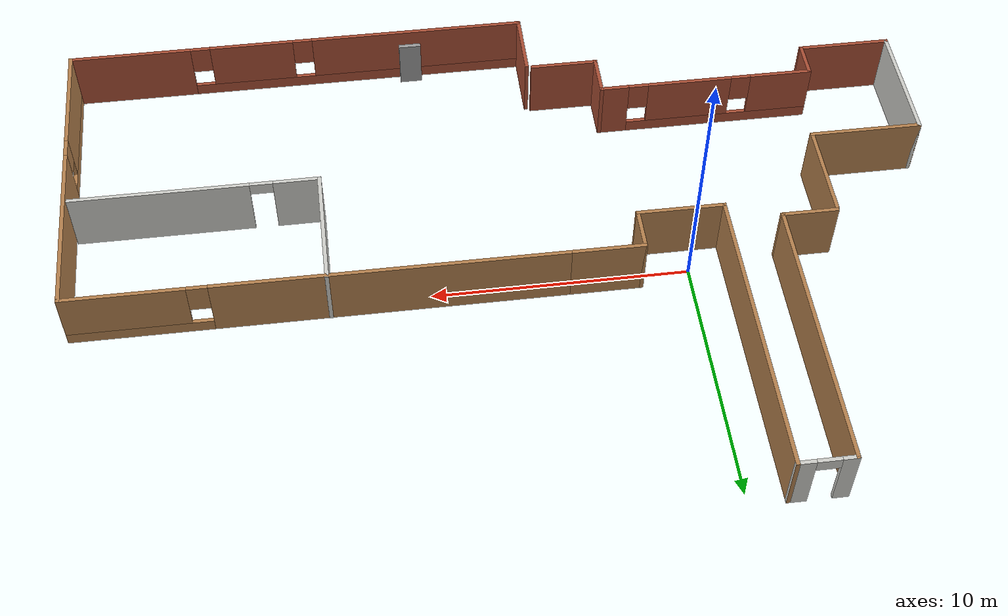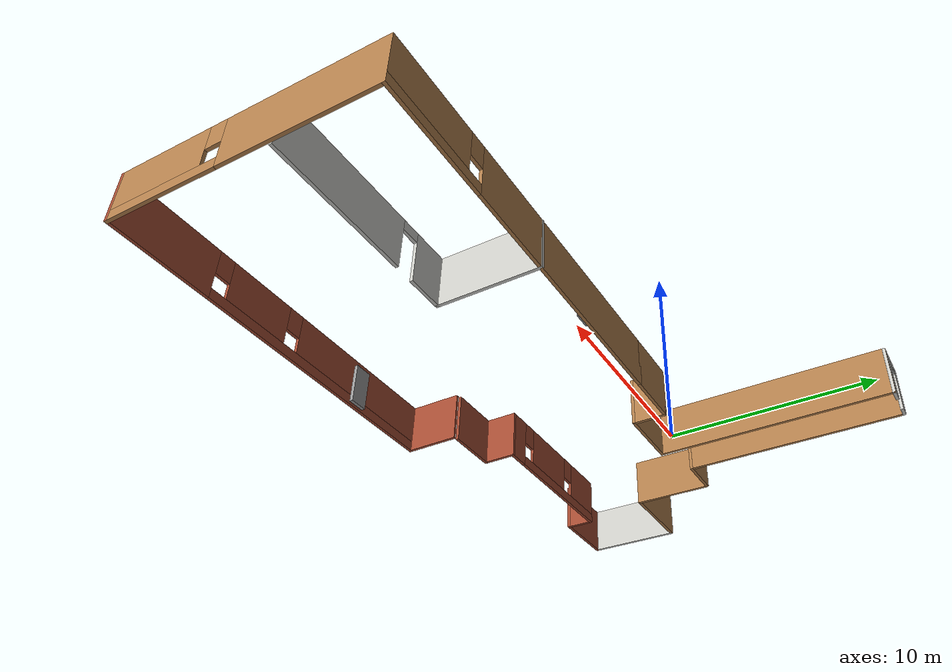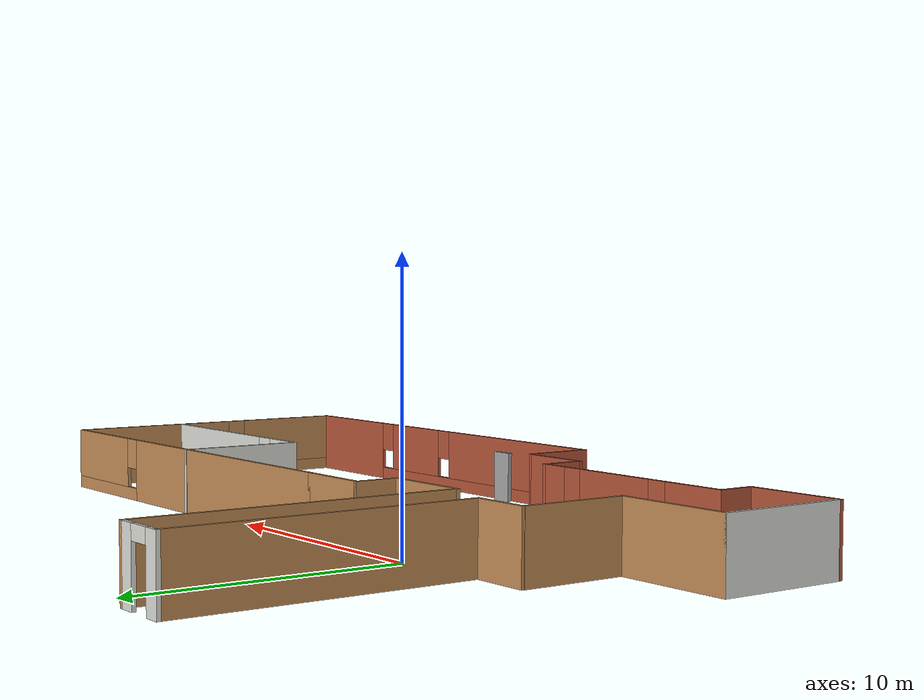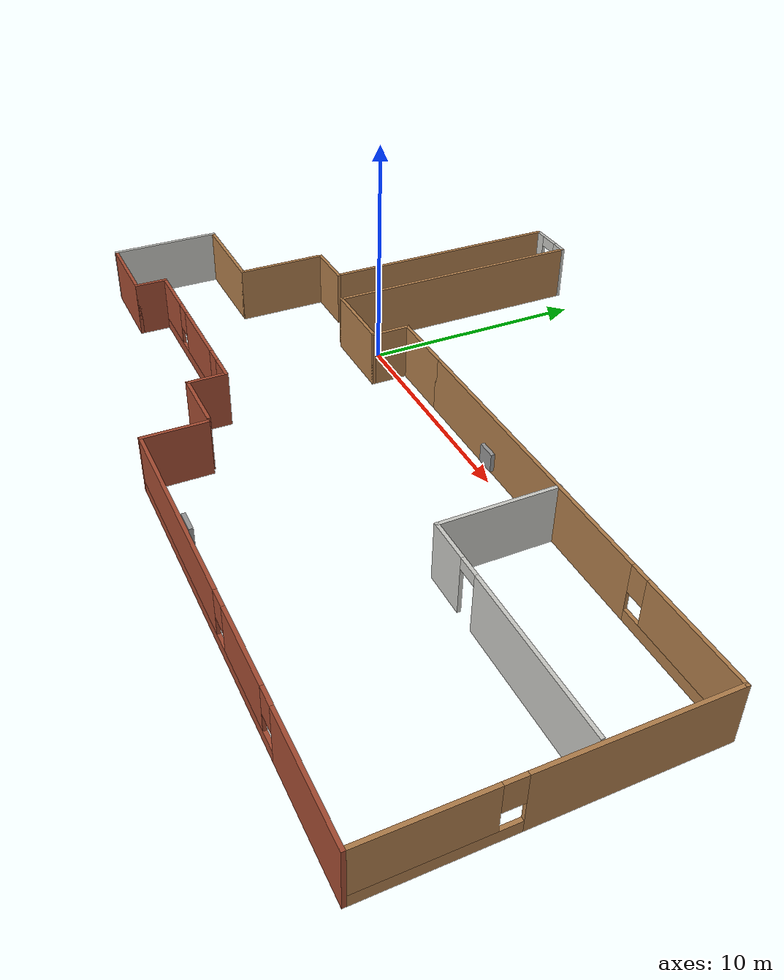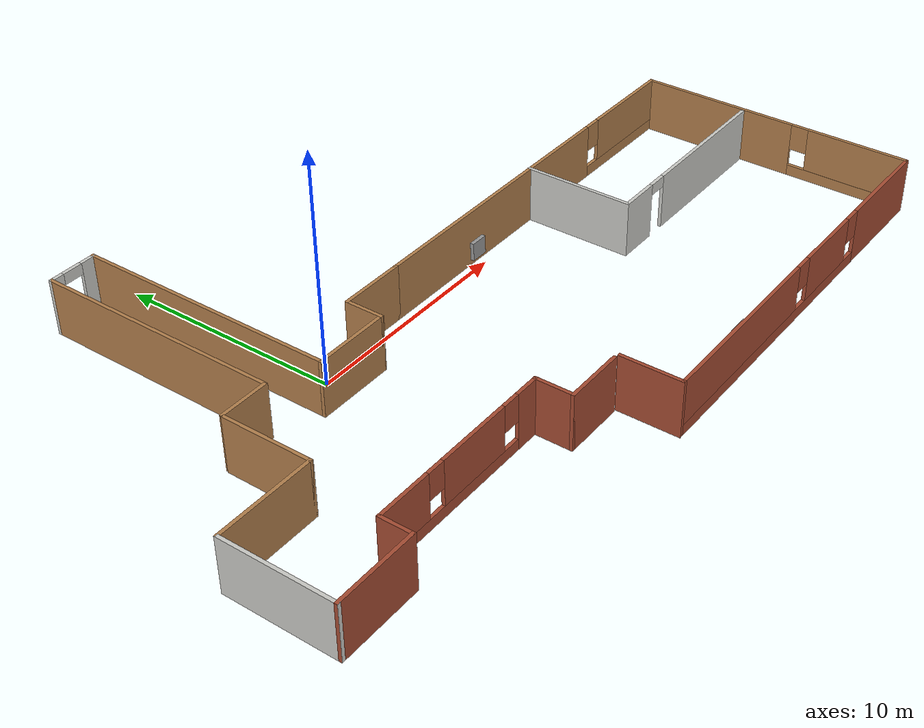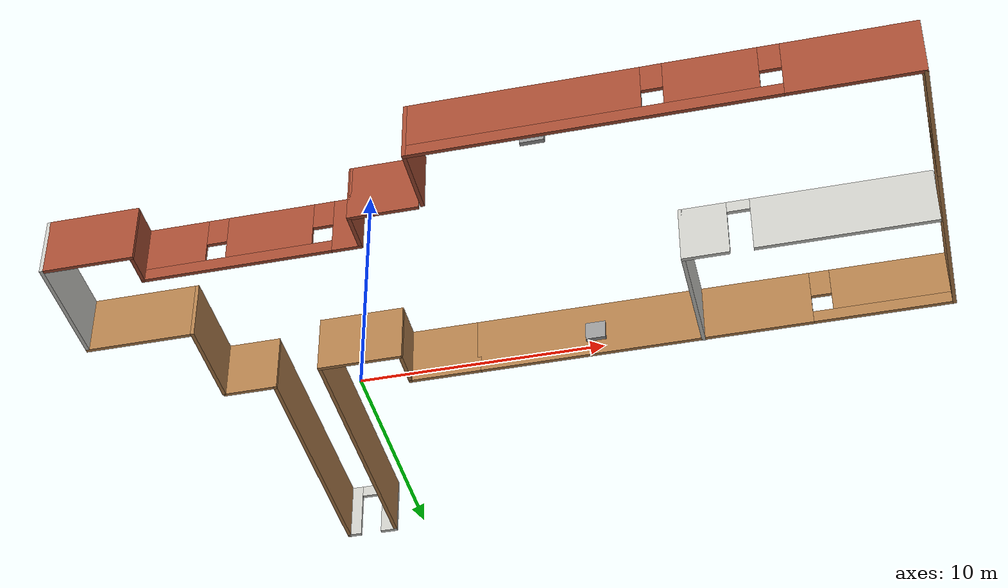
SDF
<?xml version='1.0'?>
<sdf version='1.6'>
  <model name='Building'>
    <pose frame=''>6.82492 -0.842208 0 0 -0 0</pose>
    <link name='Door_2'>
      <collision name='Door_2_Collision'>
        <geometry>
          <box>
            <size>0.9 0.17 2</size>
          </box>
        </geometry>
        <pose frame=''>0 0 1 0 -0 0</pose>
      </collision>
      <visual name='Door_2_Visual'>
        <pose frame=''>0 0 1 0 -0 0</pose>
        <geometry>
          <box>
            <size>0.9 0.17 2</size>
          </box>
        </geometry>
        <material>
          <script>
            <uri>file://media/materials/scripts/gazebo.material</uri>
            <name>Gazebo/Grey</name>
          </script>
        </material>
      </visual>
      <pose frame=''>2.85427 -10.9833 0 0 -0 0</pose>
    </link>
    <link name='Wall_22'>
      <collision name='Wall_22_Collision'>
        <geometry>
          <box>
            <size>2.75 0.15 2.5</size>
          </box>
        </geometry>
        <pose frame=''>0 0 1.25 0 -0 0</pose>
      </collision>
      <visual name='Wall_22_Visual'>
        <pose frame=''>0 0 1.25 0 -0 0</pose>
        <geometry>
          <box>
            <size>2.75 0.15 2.5</size>
          </box>
        </geometry>
        <material>
          <script>
            <uri>file://media/materials/scripts/gazebo.material</uri>
            <name>Gazebo/Bricks</name>
          </script>
          <ambient>1 1 1 1</ambient>
        </material>
        <meta>
          <layer>0</layer>
        </meta>
      </visual>
      <pose frame=''>-3.31689 -8.59353 0 0 -0 0</pose>
    </link>
    <link name='Wall_24'>
      <collision name='Wall_24_Collision'>
        <geometry>
          <box>
            <size>1.75 0.15 2.5</size>
          </box>
        </geometry>
        <pose frame=''>0 0 1.25 0 -0 0</pose>
      </collision>
      <visual name='Wall_24_Visual'>
        <pose frame=''>0 0 1.25 0 -0 0</pose>
        <geometry>
          <box>
            <size>1.75 0.15 2.5</size>
          </box>
        </geometry>
        <material>
          <script>
            <uri>file://media/materials/scripts/gazebo.material</uri>
            <name>Gazebo/Bricks</name>
          </script>
          <ambient>1 1 1 1</ambient>
        </material>
        <meta>
          <layer>0</layer>
        </meta>
      </visual>
      <pose frame=''>-4.61688 -7.79353 0 0 -0 1.5708</pose>
    </link>
    <link name='Wall_25'>
      <pose frame=''>-8.91689 -6.99353 0 0 -0 3.14159</pose>
      <visual name='Wall_25_Visual_0'>
        <pose frame=''>-3.77887 0 1.25 0 -0 0</pose>
        <geometry>
          <box>
            <size>1.19226 0.15 2.5</size>
          </box>
        </geometry>
        <material>
          <script>
            <uri>file://media/materials/scripts/gazebo.material</uri>
            <name>Gazebo/Bricks</name>
          </script>
          <ambient>1 1 1 1</ambient>
        </material>
        <meta>
          <layer>0</layer>
        </meta>
      </visual>
      <collision name='Wall_25_Collision_0'>
        <geometry>
          <box>
            <size>1.19226 0.15 2.5</size>
          </box>
        </geometry>
        <pose frame=''>-3.77887 0 1.25 0 -0 0</pose>
      </collision>
      <visual name='Wall_25_Visual_1'>
        <pose frame=''>0.596132 0 0.25 0 -0 0</pose>
        <geometry>
          <box>
            <size>7.55774 0.15 0.5</size>
          </box>
        </geometry>
        <material>
          <script>
            <uri>file://media/materials/scripts/gazebo.material</uri>
            <name>Gazebo/Bricks</name>
          </script>
          <ambient>1 1 1 1</ambient>
        </material>
        <meta>
          <layer>0</layer>
        </meta>
      </visual>
      <collision name='Wall_25_Collision_1'>
        <geometry>
          <box>
            <size>7.55774 0.15 0.5</size>
          </box>
        </geometry>
        <pose frame=''>0.596132 0 0.25 0 -0 0</pose>
      </collision>
      <visual name='Wall_25_Visual_2'>
        <pose frame=''>-0.669386 0 1.5 0 -0 0</pose>
        <geometry>
          <box>
            <size>3.4267 0.15 2</size>
          </box>
        </geometry>
        <material>
          <script>
            <uri>file://media/materials/scripts/gazebo.material</uri>
            <name>Gazebo/Bricks</name>
          </script>
          <ambient>1 1 1 1</ambient>
        </material>
        <meta>
          <layer>0</layer>
        </meta>
      </visual>
      <collision name='Wall_25_Collision_2'>
        <geometry>
          <box>
            <size>3.4267 0.15 2</size>
          </box>
        </geometry>
        <pose frame=''>-0.669386 0 1.5 0 -0 0</pose>
      </collision>
      <visual name='Wall_25_Visual_3'>
        <pose frame=''>3.10948 0 1.5 0 -0 0</pose>
        <geometry>
          <box>
            <size>2.53104 0.15 2</size>
          </box>
        </geometry>
        <material>
          <script>
            <uri>file://media/materials/scripts/gazebo.material</uri>
            <name>Gazebo/Bricks</name>
          </script>
          <ambient>1 1 1 1</ambient>
        </material>
        <meta>
          <layer>0</layer>
        </meta>
      </visual>
      <collision name='Wall_25_Collision_3'>
        <geometry>
          <box>
            <size>2.53104 0.15 2</size>
          </box>
        </geometry>
        <pose frame=''>3.10948 0 1.5 0 -0 0</pose>
      </collision>
      <visual name='Wall_25_Visual_4'>
        <pose frame=''>-2.78274 0 1.9 0 -0 0</pose>
        <geometry>
          <box>
            <size>0.8 0.15 1.2</size>
          </box>
        </geometry>
        <material>
          <script>
            <uri>file://media/materials/scripts/gazebo.material</uri>
            <name>Gazebo/Bricks</name>
          </script>
          <ambient>1 1 1 1</ambient>
        </material>
        <meta>
          <layer>0</layer>
        </meta>
      </visual>
      <collision name='Wall_25_Collision_4'>
        <geometry>
          <box>
            <size>0.8 0.15 1.2</size>
          </box>
        </geometry>
        <pose frame=''>-2.78274 0 1.9 0 -0 0</pose>
      </collision>
      <visual name='Wall_25_Visual_5'>
        <pose frame=''>1.44396 0 1.9 0 -0 0</pose>
        <geometry>
          <box>
            <size>0.8 0.15 1.2</size>
          </box>
        </geometry>
        <material>
          <script>
            <uri>file://media/materials/scripts/gazebo.material</uri>
            <name>Gazebo/Bricks</name>
          </script>
          <ambient>1 1 1 1</ambient>
        </material>
        <meta>
          <layer>0</layer>
        </meta>
      </visual>
      <collision name='Wall_25_Collision_5'>
        <geometry>
          <box>
            <size>0.8 0.15 1.2</size>
          </box>
        </geometry>
        <pose frame=''>1.44396 0 1.9 0 -0 0</pose>
      </collision>
    </link>
    <link name='Wall_26'>
      <collision name='Wall_26_Collision'>
        <geometry>
          <box>
            <size>1.5 0.15 2.5</size>
          </box>
        </geometry>
        <pose frame=''>0 0 1.25 0 -0 0</pose>
      </collision>
      <visual name='Wall_26_Visual'>
        <pose frame=''>0 0 1.25 0 -0 0</pose>
        <geometry>
          <box>
            <size>1.5 0.15 2.5</size>
          </box>
        </geometry>
        <material>
          <script>
            <uri>file://media/materials/scripts/gazebo.material</uri>
            <name>Gazebo/Bricks</name>
          </script>
          <ambient>1 1 1 1</ambient>
        </material>
        <meta>
          <layer>0</layer>
        </meta>
      </visual>
      <pose frame=''>-13.2169 -7.66853 0 0 0 -1.5708</pose>
    </link>
    <link name='Wall_27'>
      <collision name='Wall_27_Collision'>
        <geometry>
          <box>
            <size>3.75 0.15 2.5</size>
          </box>
        </geometry>
        <pose frame=''>0 0 1.25 0 -0 0</pose>
      </collision>
      <visual name='Wall_27_Visual'>
        <pose frame=''>0 0 1.25 0 -0 0</pose>
        <geometry>
          <box>
            <size>3.75 0.15 2.5</size>
          </box>
        </geometry>
        <material>
          <script>
            <uri>file://media/materials/scripts/gazebo.material</uri>
            <name>Gazebo/Bricks</name>
          </script>
          <ambient>1 1 1 1</ambient>
        </material>
        <meta>
          <layer>0</layer>
        </meta>
      </visual>
      <pose frame=''>-15.0169 -8.34353 0 0 -0 3.14159</pose>
    </link>
    <link name='Wall_28'>
      <collision name='Wall_28_Collision'>
        <geometry>
          <box>
            <size>5 0.15 2.5</size>
          </box>
        </geometry>
        <pose frame=''>0 0 1.25 0 -0 0</pose>
      </collision>
      <visual name='Wall_28_Visual'>
        <pose frame=''>0 0 1.25 0 -0 0</pose>
        <geometry>
          <box>
            <size>5 0.15 2.5</size>
          </box>
        </geometry>
        <material>
          <script>
            <uri>file://media/materials/scripts/gazebo.material</uri>
            <name>Gazebo/CeilingTiled</name>
          </script>
          <ambient>1 1 1 1</ambient>
        </material>
        <meta>
          <layer>0</layer>
        </meta>
      </visual>
      <pose frame=''>-16.8169 -5.91853 0 0 -0 1.5708</pose>
    </link>
    <link name='Wall_29'>
      <collision name='Wall_29_Collision'>
        <geometry>
          <box>
            <size>4.5 0.15 2.5</size>
          </box>
        </geometry>
        <pose frame=''>0 0 1.25 0 -0 0</pose>
      </collision>
      <visual name='Wall_29_Visual'>
        <pose frame=''>0 0 1.25 0 -0 0</pose>
        <geometry>
          <box>
            <size>4.5 0.15 2.5</size>
          </box>
        </geometry>
        <material>
          <script>
            <uri>file://media/materials/scripts/gazebo.material</uri>
            <name>Gazebo/Wood</name>
          </script>
          <ambient>1 1 1 1</ambient>
        </material>
        <meta>
          <layer>0</layer>
        </meta>
      </visual>
      <pose frame=''>-14.6419 -3.49353 0 0 -0 0</pose>
    </link>
    <link name='Wall_30'>
      <collision name='Wall_30_Collision'>
        <geometry>
          <box>
            <size>4 0.15 2.5</size>
          </box>
        </geometry>
        <pose frame=''>0 0 1.25 0 -0 0</pose>
      </collision>
      <visual name='Wall_30_Visual'>
        <pose frame=''>0 0 1.25 0 -0 0</pose>
        <geometry>
          <box>
            <size>4 0.15 2.5</size>
          </box>
        </geometry>
        <material>
          <script>
            <uri>file://media/materials/scripts/gazebo.material</uri>
            <name>Gazebo/Wood</name>
          </script>
          <ambient>1 1 1 1</ambient>
        </material>
        <meta>
          <layer>0</layer>
        </meta>
      </visual>
      <pose frame=''>-12.4669 -1.56853 0 0 -0 1.5708</pose>
    </link>
    <link name='Wall_33'>
      <collision name='Wall_33_Collision'>
        <geometry>
          <box>
            <size>11.75 0.15 2.5</size>
          </box>
        </geometry>
        <pose frame=''>0 0 1.25 0 -0 0</pose>
      </collision>
      <visual name='Wall_33_Visual'>
        <pose frame=''>0 0 1.25 0 -0 0</pose>
        <geometry>
          <box>
            <size>11.75 0.15 2.5</size>
          </box>
        </geometry>
        <material>
          <script>
            <uri>file://media/materials/scripts/gazebo.material</uri>
            <name>Gazebo/Wood</name>
          </script>
          <ambient>1 1 1 1</ambient>
        </material>
        <meta>
          <layer>0</layer>
        </meta>
      </visual>
      <pose frame=''>-8.23311 5.5 0 0 -0 1.5708</pose>
    </link>
    <link name='Wall_34'>
      <pose frame=''>-9.28312 11.3 0 0 -0 3.14159</pose>
      <visual name='Wall_34_Visual_0'>
        <pose frame=''>-0.756908 0 1.25 0 -0 0</pose>
        <geometry>
          <box>
            <size>0.736185 0.15 2.5</size>
          </box>
        </geometry>
        <material>
          <script>
            <uri>file://media/materials/scripts/gazebo.material</uri>
            <name>Gazebo/CeilingTiled</name>
          </script>
          <ambient>1 1 1 1</ambient>
        </material>
        <meta>
          <layer>0</layer>
        </meta>
      </visual>
      <collision name='Wall_34_Collision_0'>
        <geometry>
          <box>
            <size>0.736185 0.15 2.5</size>
          </box>
        </geometry>
        <pose frame=''>-0.756908 0 1.25 0 -0 0</pose>
      </collision>
      <visual name='Wall_34_Visual_1'>
        <pose frame=''>0.818092 0 1.25 0 -0 0</pose>
        <geometry>
          <box>
            <size>0.613815 0.15 2.5</size>
          </box>
        </geometry>
        <material>
          <script>
            <uri>file://media/materials/scripts/gazebo.material</uri>
            <name>Gazebo/CeilingTiled</name>
          </script>
          <ambient>1 1 1 1</ambient>
        </material>
        <meta>
          <layer>0</layer>
        </meta>
      </visual>
      <collision name='Wall_34_Collision_1'>
        <geometry>
          <box>
            <size>0.613815 0.15 2.5</size>
          </box>
        </geometry>
        <pose frame=''>0.818092 0 1.25 0 -0 0</pose>
      </collision>
      <visual name='Wall_34_Visual_2'>
        <pose frame=''>0.061185 0 2.25 0 -0 0</pose>
        <geometry>
          <box>
            <size>0.9 0.15 0.5</size>
          </box>
        </geometry>
        <material>
          <script>
            <uri>file://media/materials/scripts/gazebo.material</uri>
            <name>Gazebo/CeilingTiled</name>
          </script>
          <ambient>1 1 1 1</ambient>
        </material>
        <meta>
          <layer>0</layer>
        </meta>
      </visual>
      <collision name='Wall_34_Collision_2'>
        <geometry>
          <box>
            <size>0.9 0.15 0.5</size>
          </box>
        </geometry>
        <pose frame=''>0.061185 0 2.25 0 -0 0</pose>
      </collision>
    </link>
    <link name='Wall_35'>
      <collision name='Wall_35_Collision'>
        <geometry>
          <box>
            <size>11 0.15 2.5</size>
          </box>
        </geometry>
        <pose frame=''>0 0 1.25 0 -0 0</pose>
      </collision>
      <visual name='Wall_35_Visual'>
        <pose frame=''>0 0 1.25 0 -0 0</pose>
        <geometry>
          <box>
            <size>11 0.15 2.5</size>
          </box>
        </geometry>
        <material>
          <script>
            <uri>file://media/materials/scripts/gazebo.material</uri>
            <name>Gazebo/Wood</name>
          </script>
          <ambient>1 1 1 1</ambient>
        </material>
        <meta>
          <layer>0</layer>
        </meta>
      </visual>
      <pose frame=''>-10.3331 5.875 0 0 0 -1.5708</pose>
    </link>
    <link name='Wall_36'>
      <collision name='Wall_36_Collision'>
        <geometry>
          <box>
            <size>2.25 0.15 2.5</size>
          </box>
        </geometry>
        <pose frame=''>0 0 1.25 0 -0 0</pose>
      </collision>
      <visual name='Wall_36_Visual'>
        <pose frame=''>0 0 1.25 0 -0 0</pose>
        <geometry>
          <box>
            <size>2.25 0.15 2.5</size>
          </box>
        </geometry>
        <material>
          <script>
            <uri>file://media/materials/scripts/gazebo.material</uri>
            <name>Gazebo/Wood</name>
          </script>
          <ambient>1 1 1 1</ambient>
        </material>
        <meta>
          <layer>0</layer>
        </meta>
      </visual>
      <pose frame=''>-11.3831 0.45 0 0 -0 3.14159</pose>
    </link>
    <link name='Wall_41'>
      <pose frame=''>7.39189 1.3 0 0 -0 0</pose>
      <visual name='Wall_41_Visual_0'>
        <pose frame=''>-2.75135 0 1.25 0 -0 0</pose>
        <geometry>
          <box>
            <size>13.4973 0.15 2.5</size>
          </box>
        </geometry>
        <material>
          <script>
            <uri>file://media/materials/scripts/gazebo.material</uri>
            <name>Gazebo/Wood</name>
          </script>
          <ambient>1 1 1 1</ambient>
        </material>
        <meta>
          <layer>0</layer>
        </meta>
      </visual>
      <collision name='Wall_41_Collision_0'>
        <geometry>
          <box>
            <size>13.4973 0.15 2.5</size>
          </box>
        </geometry>
        <pose frame=''>-2.75135 0 1.25 0 -0 0</pose>
      </collision>
      <visual name='Wall_41_Visual_1'>
        <pose frame=''>6.74865 0 0.25 0 -0 0</pose>
        <geometry>
          <box>
            <size>5.5027 0.15 0.5</size>
          </box>
        </geometry>
        <material>
          <script>
            <uri>file://media/materials/scripts/gazebo.material</uri>
            <name>Gazebo/Wood</name>
          </script>
          <ambient>1 1 1 1</ambient>
        </material>
        <meta>
          <layer>0</layer>
        </meta>
      </visual>
      <collision name='Wall_41_Collision_1'>
        <geometry>
          <box>
            <size>5.5027 0.15 0.5</size>
          </box>
        </geometry>
        <pose frame=''>6.74865 0 0.25 0 -0 0</pose>
      </collision>
      <visual name='Wall_41_Visual_2'>
        <pose frame=''>7.14865 0 1.5 0 -0 0</pose>
        <geometry>
          <box>
            <size>4.7027 0.15 2</size>
          </box>
        </geometry>
        <material>
          <script>
            <uri>file://media/materials/scripts/gazebo.material</uri>
            <name>Gazebo/Wood</name>
          </script>
          <ambient>1 1 1 1</ambient>
        </material>
        <meta>
          <layer>0</layer>
        </meta>
      </visual>
      <collision name='Wall_41_Collision_2'>
        <geometry>
          <box>
            <size>4.7027 0.15 2</size>
          </box>
        </geometry>
        <pose frame=''>7.14865 0 1.5 0 -0 0</pose>
      </collision>
      <visual name='Wall_41_Visual_3'>
        <pose frame=''>4.3973 0 1.9 0 -0 0</pose>
        <geometry>
          <box>
            <size>0.8 0.15 1.2</size>
          </box>
        </geometry>
        <material>
          <script>
            <uri>file://media/materials/scripts/gazebo.material</uri>
            <name>Gazebo/Wood</name>
          </script>
          <ambient>1 1 1 1</ambient>
        </material>
        <meta>
          <layer>0</layer>
        </meta>
      </visual>
      <collision name='Wall_41_Collision_3'>
        <geometry>
          <box>
            <size>0.8 0.15 1.2</size>
          </box>
        </geometry>
        <pose frame=''>4.3973 0 1.9 0 -0 0</pose>
      </collision>
    </link>
    <link name='Wall_42'>
      <pose frame=''>16.8169 -5 0 0 0 -1.5708</pose>
      <visual name='Wall_42_Visual_0'>
        <pose frame=''>-2.72318 0 1.25 0 -0 0</pose>
        <geometry>
          <box>
            <size>7.30363 0.15 2.5</size>
          </box>
        </geometry>
        <material>
          <script>
            <uri>file://media/materials/scripts/gazebo.material</uri>
            <name>Gazebo/Wood</name>
          </script>
          <ambient>1 1 1 1</ambient>
        </material>
        <meta>
          <layer>0</layer>
        </meta>
      </visual>
      <collision name='Wall_42_Collision_0'>
        <geometry>
          <box>
            <size>7.30363 0.15 2.5</size>
          </box>
        </geometry>
        <pose frame=''>-2.72318 0 1.25 0 -0 0</pose>
      </collision>
      <visual name='Wall_42_Visual_1'>
        <pose frame=''>3.65182 0 0.25 0 -0 0</pose>
        <geometry>
          <box>
            <size>5.44637 0.15 0.5</size>
          </box>
        </geometry>
        <material>
          <script>
            <uri>file://media/materials/scripts/gazebo.material</uri>
            <name>Gazebo/Wood</name>
          </script>
          <ambient>1 1 1 1</ambient>
        </material>
        <meta>
          <layer>0</layer>
        </meta>
      </visual>
      <collision name='Wall_42_Collision_1'>
        <geometry>
          <box>
            <size>5.44637 0.15 0.5</size>
          </box>
        </geometry>
        <pose frame=''>3.65182 0 0.25 0 -0 0</pose>
      </collision>
      <visual name='Wall_42_Visual_2'>
        <pose frame=''>4.05182 0 1.5 0 -0 0</pose>
        <geometry>
          <box>
            <size>4.64637 0.15 2</size>
          </box>
        </geometry>
        <material>
          <script>
            <uri>file://media/materials/scripts/gazebo.material</uri>
            <name>Gazebo/Wood</name>
          </script>
          <ambient>1 1 1 1</ambient>
        </material>
        <meta>
          <layer>0</layer>
        </meta>
      </visual>
      <collision name='Wall_42_Collision_2'>
        <geometry>
          <box>
            <size>4.64637 0.15 2</size>
          </box>
        </geometry>
        <pose frame=''>4.05182 0 1.5 0 -0 0</pose>
      </collision>
      <visual name='Wall_42_Visual_3'>
        <pose frame=''>1.32863 0 1.9 0 -0 0</pose>
        <geometry>
          <box>
            <size>0.8 0.15 1.2</size>
          </box>
        </geometry>
        <material>
          <script>
            <uri>file://media/materials/scripts/gazebo.material</uri>
            <name>Gazebo/Wood</name>
          </script>
          <ambient>1 1 1 1</ambient>
        </material>
        <meta>
          <layer>0</layer>
        </meta>
      </visual>
      <collision name='Wall_42_Collision_3'>
        <geometry>
          <box>
            <size>0.8 0.15 1.2</size>
          </box>
        </geometry>
        <pose frame=''>1.32863 0 1.9 0 -0 0</pose>
      </collision>
    </link>
    <link name='Wall_43'>
      <pose frame=''>7.51689 -11.3 0 0 -0 3.14159</pose>
      <visual name='Wall_43_Visual_0'>
        <pose frame=''>-6.8899 0 1.25 0 -0 0</pose>
        <geometry>
          <box>
            <size>4.97021 0.15 2.5</size>
          </box>
        </geometry>
        <material>
          <script>
            <uri>file://media/materials/scripts/gazebo.material</uri>
            <name>Gazebo/Bricks</name>
          </script>
          <ambient>1 1 1 1</ambient>
        </material>
        <meta>
          <layer>0</layer>
        </meta>
      </visual>
      <collision name='Wall_43_Collision_0'>
        <geometry>
          <box>
            <size>4.97021 0.15 2.5</size>
          </box>
        </geometry>
        <pose frame=''>-6.8899 0 1.25 0 -0 0</pose>
      </collision>
      <visual name='Wall_43_Visual_1'>
        <pose frame=''>2.4851 0 0.25 0 -0 0</pose>
        <geometry>
          <box>
            <size>13.7798 0.15 0.5</size>
          </box>
        </geometry>
        <material>
          <script>
            <uri>file://media/materials/scripts/gazebo.material</uri>
            <name>Gazebo/Bricks</name>
          </script>
          <ambient>1 1 1 1</ambient>
        </material>
        <meta>
          <layer>0</layer>
        </meta>
      </visual>
      <collision name='Wall_43_Collision_1'>
        <geometry>
          <box>
            <size>13.7798 0.15 0.5</size>
          </box>
        </geometry>
        <pose frame=''>2.4851 0 0.25 0 -0 0</pose>
      </collision>
      <visual name='Wall_43_Visual_2'>
        <pose frame=''>-1.89144 0 1.5 0 -0 0</pose>
        <geometry>
          <box>
            <size>3.4267 0.15 2</size>
          </box>
        </geometry>
        <material>
          <script>
            <uri>file://media/materials/scripts/gazebo.material</uri>
            <name>Gazebo/Bricks</name>
          </script>
          <ambient>1 1 1 1</ambient>
        </material>
        <meta>
          <layer>0</layer>
        </meta>
      </visual>
      <collision name='Wall_43_Collision_2'>
        <geometry>
          <box>
            <size>3.4267 0.15 2</size>
          </box>
        </geometry>
        <pose frame=''>-1.89144 0 1.5 0 -0 0</pose>
      </collision>
      <visual name='Wall_43_Visual_3'>
        <pose frame=''>4.99845 0 1.5 0 -0 0</pose>
        <geometry>
          <box>
            <size>8.75309 0.15 2</size>
          </box>
        </geometry>
        <material>
          <script>
            <uri>file://media/materials/scripts/gazebo.material</uri>
            <name>Gazebo/Bricks</name>
          </script>
          <ambient>1 1 1 1</ambient>
        </material>
        <meta>
          <layer>0</layer>
        </meta>
      </visual>
      <collision name='Wall_43_Collision_3'>
        <geometry>
          <box>
            <size>8.75309 0.15 2</size>
          </box>
        </geometry>
        <pose frame=''>4.99845 0 1.5 0 -0 0</pose>
      </collision>
      <visual name='Wall_43_Visual_4'>
        <pose frame=''>-4.00479 0 1.9 0 -0 0</pose>
        <geometry>
          <box>
            <size>0.8 0.15 1.2</size>
          </box>
        </geometry>
        <material>
          <script>
            <uri>file://media/materials/scripts/gazebo.material</uri>
            <name>Gazebo/Bricks</name>
          </script>
          <ambient>1 1 1 1</ambient>
        </material>
        <meta>
          <layer>0</layer>
        </meta>
      </visual>
      <collision name='Wall_43_Collision_4'>
        <geometry>
          <box>
            <size>0.8 0.15 1.2</size>
          </box>
        </geometry>
        <pose frame=''>-4.00479 0 1.9 0 -0 0</pose>
      </collision>
      <visual name='Wall_43_Visual_5'>
        <pose frame=''>0.221907 0 1.9 0 -0 0</pose>
        <geometry>
          <box>
            <size>0.8 0.15 1.2</size>
          </box>
        </geometry>
        <material>
          <script>
            <uri>file://media/materials/scripts/gazebo.material</uri>
            <name>Gazebo/Bricks</name>
          </script>
          <ambient>1 1 1 1</ambient>
        </material>
        <meta>
          <layer>0</layer>
        </meta>
      </visual>
      <collision name='Wall_43_Collision_5'>
        <geometry>
          <box>
            <size>0.8 0.15 1.2</size>
          </box>
        </geometry>
        <pose frame=''>0.221907 0 1.9 0 -0 0</pose>
      </collision>
    </link>
    <link name='Wall_44'>
      <collision name='Wall_44_Collision'>
        <geometry>
          <box>
            <size>2.75 0.15 2.5</size>
          </box>
        </geometry>
        <pose frame=''>0 0 1.25 0 -0 0</pose>
      </collision>
      <visual name='Wall_44_Visual'>
        <pose frame=''>0 0 1.25 0 -0 0</pose>
        <geometry>
          <box>
            <size>2.75 0.15 2.5</size>
          </box>
        </geometry>
        <material>
          <script>
            <uri>file://media/materials/scripts/gazebo.material</uri>
            <name>Gazebo/Bricks</name>
          </script>
          <ambient>1 1 1 1</ambient>
        </material>
        <meta>
          <layer>0</layer>
        </meta>
      </visual>
      <pose frame=''>-1.78312 -10 0 0 -0 1.5708</pose>
    </link>
    <link name='Wall_46'>
      <collision name='Wall_46_Collision'>
        <geometry>
          <box>
            <size>5 0.15 2.5</size>
          </box>
        </geometry>
        <pose frame=''>0 0 1.25 0 -0 0</pose>
      </collision>
      <visual name='Wall_46_Visual'>
        <pose frame=''>0 0 1.25 0 -0 0</pose>
        <geometry>
          <box>
            <size>5 0.15 2.5</size>
          </box>
        </geometry>
        <material>
          <script>
            <uri>file://media/materials/scripts/gazebo.material</uri>
            <name>Gazebo/CeilingTiled</name>
          </script>
          <ambient>1 1 1 1</ambient>
        </material>
        <meta>
          <layer>0</layer>
        </meta>
      </visual>
      <pose frame=''>7.02747 -1.10277 0 0 0 -1.5708</pose>
    </link>
    <link name='Wall_47'>
      <pose frame=''>11.8275 -3.52777 0 0 -0 0</pose>
      <visual name='Wall_47_Visual_0'>
        <pose frame=''>-3.93895 0 1.25 0 -0 0</pose>
        <geometry>
          <box>
            <size>1.8721 0.15 2.5</size>
          </box>
        </geometry>
        <material>
          <script>
            <uri>file://media/materials/scripts/gazebo.material</uri>
            <name>Gazebo/CeilingTiled</name>
          </script>
          <ambient>1 1 1 1</ambient>
        </material>
        <meta>
          <layer>0</layer>
        </meta>
      </visual>
      <collision name='Wall_47_Collision_0'>
        <geometry>
          <box>
            <size>1.8721 0.15 2.5</size>
          </box>
        </geometry>
        <pose frame=''>-3.93895 0 1.25 0 -0 0</pose>
      </collision>
      <visual name='Wall_47_Visual_1'>
        <pose frame=''>1.38605 0 1.25 0 -0 0</pose>
        <geometry>
          <box>
            <size>6.9779 0.15 2.5</size>
          </box>
        </geometry>
        <material>
          <script>
            <uri>file://media/materials/scripts/gazebo.material</uri>
            <name>Gazebo/CeilingTiled</name>
          </script>
          <ambient>1 1 1 1</ambient>
        </material>
        <meta>
          <layer>0</layer>
        </meta>
      </visual>
      <collision name='Wall_47_Collision_1'>
        <geometry>
          <box>
            <size>6.9779 0.15 2.5</size>
          </box>
        </geometry>
        <pose frame=''>1.38605 0 1.25 0 -0 0</pose>
      </collision>
      <visual name='Wall_47_Visual_2'>
        <pose frame=''>-2.55289 0 2.25 0 -0 0</pose>
        <geometry>
          <box>
            <size>0.9 0.15 0.5</size>
          </box>
        </geometry>
        <material>
          <script>
            <uri>file://media/materials/scripts/gazebo.material</uri>
            <name>Gazebo/CeilingTiled</name>
          </script>
          <ambient>1 1 1 1</ambient>
        </material>
        <meta>
          <layer>0</layer>
        </meta>
      </visual>
      <collision name='Wall_47_Collision_2'>
        <geometry>
          <box>
            <size>0.9 0.15 0.5</size>
          </box>
        </geometry>
        <pose frame=''>-2.55289 0 2.25 0 -0 0</pose>
      </collision>
    </link>
    <link name='Wall_5'>
      <collision name='Wall_5_Collision'>
        <geometry>
          <box>
            <size>3.5 0.15 2.5</size>
          </box>
        </geometry>
        <pose frame=''>0 0 1.25 0 -0 0</pose>
      </collision>
      <visual name='Wall_5_Visual'>
        <pose frame=''>0 0 1.25 0 -0 0</pose>
        <geometry>
          <box>
            <size>3.5 0.15 2.5</size>
          </box>
        </geometry>
        <material>
          <script>
            <uri>file://media/materials/scripts/gazebo.material</uri>
            <name>Gazebo/Wood</name>
          </script>
          <ambient>1 1 1 1</ambient>
        </material>
        <meta>
          <layer>0</layer>
        </meta>
      </visual>
      <pose frame=''>-6.55811 -0.3 0 0 -0 0</pose>
    </link>
    <link name='Wall_6'>
      <collision name='Wall_6_Collision'>
        <geometry>
          <box>
            <size>1.75 0.15 2.5</size>
          </box>
        </geometry>
        <pose frame=''>0 0 1.25 0 -0 0</pose>
      </collision>
      <visual name='Wall_6_Visual'>
        <pose frame=''>0 0 1.25 0 -0 0</pose>
        <geometry>
          <box>
            <size>1.75 0.15 2.5</size>
          </box>
        </geometry>
        <material>
          <script>
            <uri>file://media/materials/scripts/gazebo.material</uri>
            <name>Gazebo/Wood</name>
          </script>
          <ambient>1 1 1 1</ambient>
        </material>
        <meta>
          <layer>0</layer>
        </meta>
      </visual>
      <pose frame=''>-4.88312 0.5 0 0 -0 1.5708</pose>
    </link>
    <link name='Wall_7'>
      <collision name='Wall_7_Collision'>
        <geometry>
          <box>
            <size>3 0.15 2.5</size>
          </box>
        </geometry>
        <pose frame=''>0 0 1.25 0 -0 0</pose>
      </collision>
      <visual name='Wall_7_Visual'>
        <pose frame=''>0 0 1.25 0 -0 0</pose>
        <geometry>
          <box>
            <size>3 0.15 2.5</size>
          </box>
        </geometry>
        <material>
          <script>
            <uri>file://media/materials/scripts/gazebo.material</uri>
            <name>Gazebo/Wood</name>
          </script>
          <ambient>1 1 1 1</ambient>
        </material>
        <meta>
          <layer>0</layer>
        </meta>
      </visual>
      <pose frame=''>-3.45811 1.3 0 0 -0 0</pose>
    </link>
    <link name='Window_6'>
      <collision name='Window_6_Collision'>
        <geometry>
          <box>
            <size>0.8 0.17 0.8</size>
          </box>
        </geometry>
        <pose frame=''>0 0 0.4 0 -0 0</pose>
      </collision>
      <visual name='Window_6_Visual'>
        <pose frame=''>0 0 0.4 0 -0 0</pose>
        <geometry>
          <box>
            <size>0.8 0.17 0.8</size>
          </box>
        </geometry>
        <material>
          <script>
            <uri>file://media/materials/scripts/gazebo.material</uri>
            <name>Gazebo/Grey</name>
          </script>
        </material>
      </visual>
      <pose frame=''>2.80077 0.947709 0.5 0 -0 0</pose>
    </link>
    <static>1</static>
  </model>
</sdf>
